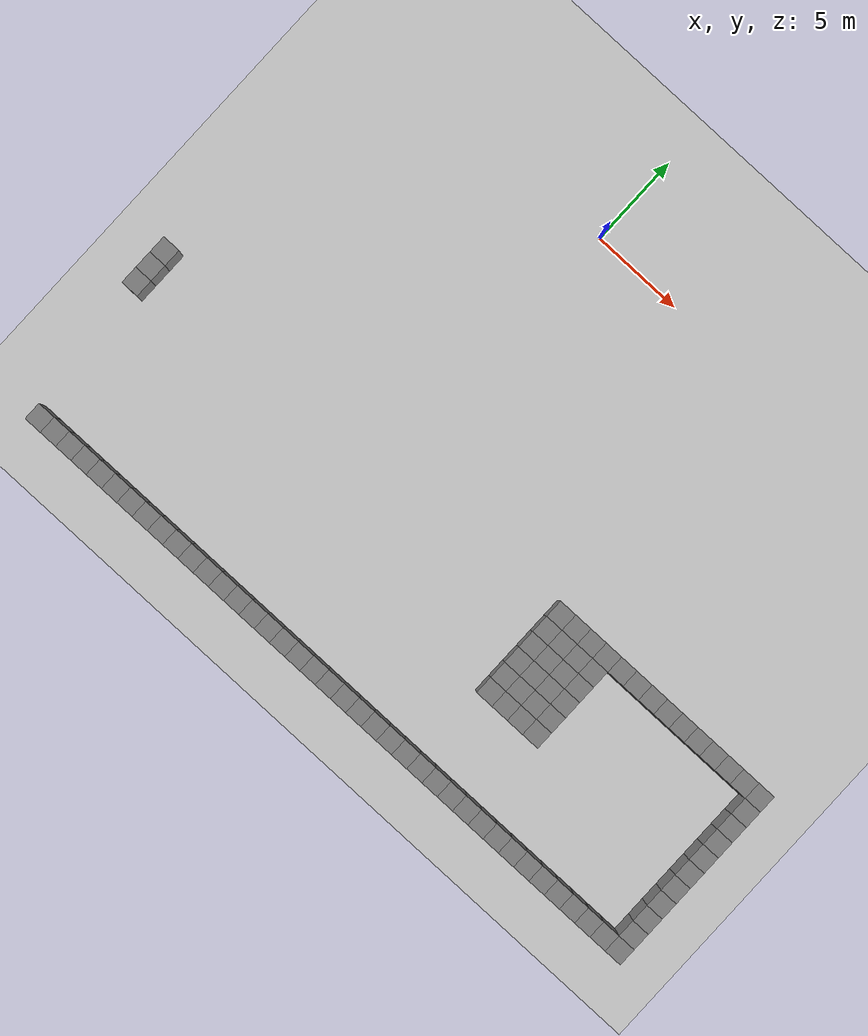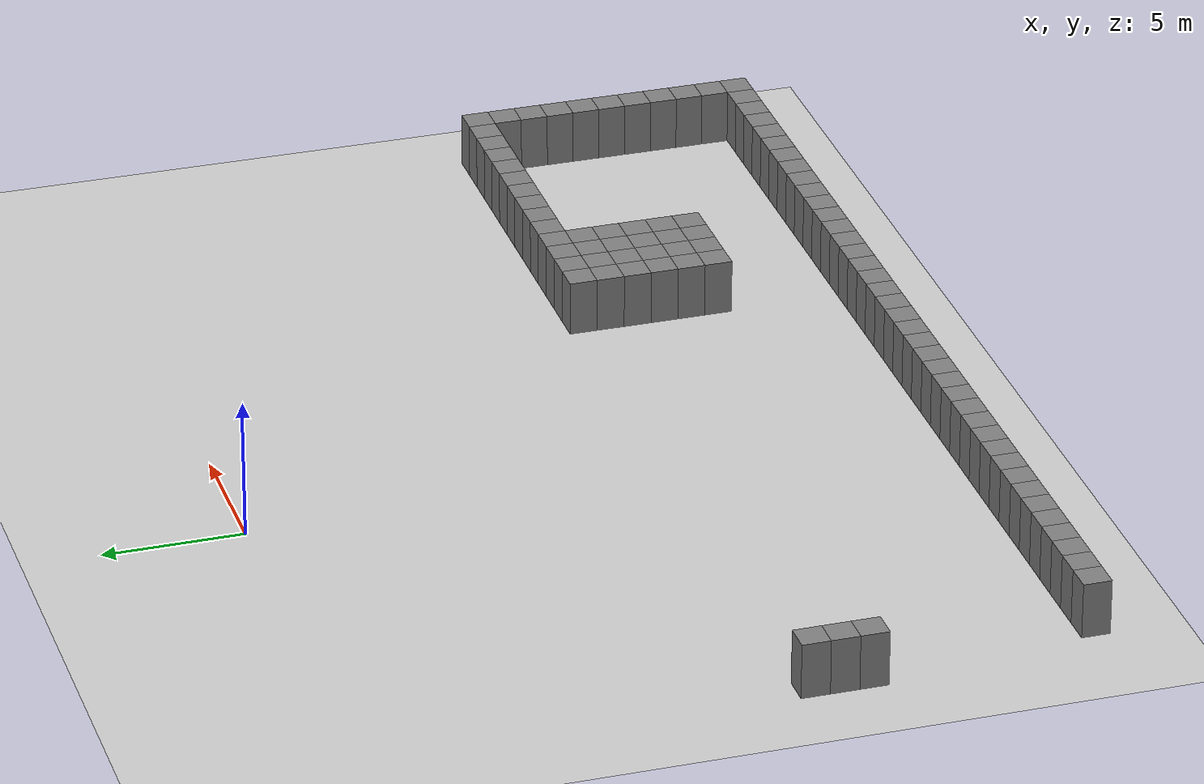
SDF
<sdf version="1.9">
 <world name="grid_world">
  <model name="ground_plane">
   <static>true</static>
   <link name="link">
    <collision name="collision">
     <geometry><plane><normal>0 0 1</normal><size>100 100</size></plane></geometry>
    </collision>
    <visual name="visual">
     <geometry><plane><normal>0 0 1</normal><size>100 100</size></plane></geometry>
     <material>
      <ambient>0.8 0.8 0.8 1</ambient>
      <diffuse>0.8 0.8 0.8 1</diffuse>
      <specular>0.8 0.8 0.8 1</specular>
     </material>
    </visual>
   </link>
  </model>
  <model name="wall_0_11">
   <static>true</static>
   <pose>-14 -25 1 0 0 0</pose>
   <link name="link">
    <collision name="collision"><geometry><box><size>1 1 2</size></box></geometry></collision>
    <visual name="visual">
     <geometry><box><size>1 1 2</size></box></geometry>
     <material>
      <ambient>0.5 0.5 0.5 1</ambient>
      <diffuse>0.5 0.5 0.5 1</diffuse>
      <specular>0.5 0.5 0.5 1</specular>
     </material>
    </visual>
   </link>
  </model>
  <model name="wall_0_12">
   <static>true</static>
   <pose>-13 -25 1 0 0 0</pose>
   <link name="link">
    <collision name="collision"><geometry><box><size>1 1 2</size></box></geometry></collision>
    <visual name="visual">
     <geometry><box><size>1 1 2</size></box></geometry>
     <material>
      <ambient>0.5 0.5 0.5 1</ambient>
      <diffuse>0.5 0.5 0.5 1</diffuse>
      <specular>0.5 0.5 0.5 1</specular>
     </material>
    </visual>
   </link>
  </model>
  <model name="wall_0_13">
   <static>true</static>
   <pose>-12 -25 1 0 0 0</pose>
   <link name="link">
    <collision name="collision"><geometry><box><size>1 1 2</size></box></geometry></collision>
    <visual name="visual">
     <geometry><box><size>1 1 2</size></box></geometry>
     <material>
      <ambient>0.5 0.5 0.5 1</ambient>
      <diffuse>0.5 0.5 0.5 1</diffuse>
      <specular>0.5 0.5 0.5 1</specular>
     </material>
    </visual>
   </link>
  </model>
  <model name="wall_0_14">
   <static>true</static>
   <pose>-11 -25 1 0 0 0</pose>
   <link name="link">
    <collision name="collision"><geometry><box><size>1 1 2</size></box></geometry></collision>
    <visual name="visual">
     <geometry><box><size>1 1 2</size></box></geometry>
     <material>
      <ambient>0.5 0.5 0.5 1</ambient>
      <diffuse>0.5 0.5 0.5 1</diffuse>
      <specular>0.5 0.5 0.5 1</specular>
     </material>
    </visual>
   </link>
  </model>
  <model name="wall_0_15">
   <static>true</static>
   <pose>-10 -25 1 0 0 0</pose>
   <link name="link">
    <collision name="collision"><geometry><box><size>1 1 2</size></box></geometry></collision>
    <visual name="visual">
     <geometry><box><size>1 1 2</size></box></geometry>
     <material>
      <ambient>0.5 0.5 0.5 1</ambient>
      <diffuse>0.5 0.5 0.5 1</diffuse>
      <specular>0.5 0.5 0.5 1</specular>
     </material>
    </visual>
   </link>
  </model>
  <model name="wall_0_16">
   <static>true</static>
   <pose>-9 -25 1 0 0 0</pose>
   <link name="link">
    <collision name="collision"><geometry><box><size>1 1 2</size></box></geometry></collision>
    <visual name="visual">
     <geometry><box><size>1 1 2</size></box></geometry>
     <material>
      <ambient>0.5 0.5 0.5 1</ambient>
      <diffuse>0.5 0.5 0.5 1</diffuse>
      <specular>0.5 0.5 0.5 1</specular>
     </material>
    </visual>
   </link>
  </model>
  <model name="wall_0_17">
   <static>true</static>
   <pose>-8 -25 1 0 0 0</pose>
   <link name="link">
    <collision name="collision"><geometry><box><size>1 1 2</size></box></geometry></collision>
    <visual name="visual">
     <geometry><box><size>1 1 2</size></box></geometry>
     <material>
      <ambient>0.5 0.5 0.5 1</ambient>
      <diffuse>0.5 0.5 0.5 1</diffuse>
      <specular>0.5 0.5 0.5 1</specular>
     </material>
    </visual>
   </link>
  </model>
  <model name="wall_0_18">
   <static>true</static>
   <pose>-7 -25 1 0 0 0</pose>
   <link name="link">
    <collision name="collision"><geometry><box><size>1 1 2</size></box></geometry></collision>
    <visual name="visual">
     <geometry><box><size>1 1 2</size></box></geometry>
     <material>
      <ambient>0.5 0.5 0.5 1</ambient>
      <diffuse>0.5 0.5 0.5 1</diffuse>
      <specular>0.5 0.5 0.5 1</specular>
     </material>
    </visual>
   </link>
  </model>
  <model name="wall_0_19">
   <static>true</static>
   <pose>-6 -25 1 0 0 0</pose>
   <link name="link">
    <collision name="collision"><geometry><box><size>1 1 2</size></box></geometry></collision>
    <visual name="visual">
     <geometry><box><size>1 1 2</size></box></geometry>
     <material>
      <ambient>0.5 0.5 0.5 1</ambient>
      <diffuse>0.5 0.5 0.5 1</diffuse>
      <specular>0.5 0.5 0.5 1</specular>
     </material>
    </visual>
   </link>
  </model>
  <model name="wall_0_20">
   <static>true</static>
   <pose>-5 -25 1 0 0 0</pose>
   <link name="link">
    <collision name="collision"><geometry><box><size>1 1 2</size></box></geometry></collision>
    <visual name="visual">
     <geometry><box><size>1 1 2</size></box></geometry>
     <material>
      <ambient>0.5 0.5 0.5 1</ambient>
      <diffuse>0.5 0.5 0.5 1</diffuse>
      <specular>0.5 0.5 0.5 1</specular>
     </material>
    </visual>
   </link>
  </model>
  <model name="wall_0_21">
   <static>true</static>
   <pose>-4 -25 1 0 0 0</pose>
   <link name="link">
    <collision name="collision"><geometry><box><size>1 1 2</size></box></geometry></collision>
    <visual name="visual">
     <geometry><box><size>1 1 2</size></box></geometry>
     <material>
      <ambient>0.5 0.5 0.5 1</ambient>
      <diffuse>0.5 0.5 0.5 1</diffuse>
      <specular>0.5 0.5 0.5 1</specular>
     </material>
    </visual>
   </link>
  </model>
  <model name="wall_0_22">
   <static>true</static>
   <pose>-3 -25 1 0 0 0</pose>
   <link name="link">
    <collision name="collision"><geometry><box><size>1 1 2</size></box></geometry></collision>
    <visual name="visual">
     <geometry><box><size>1 1 2</size></box></geometry>
     <material>
      <ambient>0.5 0.5 0.5 1</ambient>
      <diffuse>0.5 0.5 0.5 1</diffuse>
      <specular>0.5 0.5 0.5 1</specular>
     </material>
    </visual>
   </link>
  </model>
  <model name="wall_0_23">
   <static>true</static>
   <pose>-2 -25 1 0 0 0</pose>
   <link name="link">
    <collision name="collision"><geometry><box><size>1 1 2</size></box></geometry></collision>
    <visual name="visual">
     <geometry><box><size>1 1 2</size></box></geometry>
     <material>
      <ambient>0.5 0.5 0.5 1</ambient>
      <diffuse>0.5 0.5 0.5 1</diffuse>
      <specular>0.5 0.5 0.5 1</specular>
     </material>
    </visual>
   </link>
  </model>
  <model name="wall_0_24">
   <static>true</static>
   <pose>-1 -25 1 0 0 0</pose>
   <link name="link">
    <collision name="collision"><geometry><box><size>1 1 2</size></box></geometry></collision>
    <visual name="visual">
     <geometry><box><size>1 1 2</size></box></geometry>
     <material>
      <ambient>0.5 0.5 0.5 1</ambient>
      <diffuse>0.5 0.5 0.5 1</diffuse>
      <specular>0.5 0.5 0.5 1</specular>
     </material>
    </visual>
   </link>
  </model>
  <model name="wall_0_25">
   <static>true</static>
   <pose>0 -25 1 0 0 0</pose>
   <link name="link">
    <collision name="collision"><geometry><box><size>1 1 2</size></box></geometry></collision>
    <visual name="visual">
     <geometry><box><size>1 1 2</size></box></geometry>
     <material>
      <ambient>0.5 0.5 0.5 1</ambient>
      <diffuse>0.5 0.5 0.5 1</diffuse>
      <specular>0.5 0.5 0.5 1</specular>
     </material>
    </visual>
   </link>
  </model>
  <model name="wall_0_26">
   <static>true</static>
   <pose>1 -25 1 0 0 0</pose>
   <link name="link">
    <collision name="collision"><geometry><box><size>1 1 2</size></box></geometry></collision>
    <visual name="visual">
     <geometry><box><size>1 1 2</size></box></geometry>
     <material>
      <ambient>0.5 0.5 0.5 1</ambient>
      <diffuse>0.5 0.5 0.5 1</diffuse>
      <specular>0.5 0.5 0.5 1</specular>
     </material>
    </visual>
   </link>
  </model>
  <model name="wall_0_27">
   <static>true</static>
   <pose>2 -25 1 0 0 0</pose>
   <link name="link">
    <collision name="collision"><geometry><box><size>1 1 2</size></box></geometry></collision>
    <visual name="visual">
     <geometry><box><size>1 1 2</size></box></geometry>
     <material>
      <ambient>0.5 0.5 0.5 1</ambient>
      <diffuse>0.5 0.5 0.5 1</diffuse>
      <specular>0.5 0.5 0.5 1</specular>
     </material>
    </visual>
   </link>
  </model>
  <model name="wall_0_28">
   <static>true</static>
   <pose>3 -25 1 0 0 0</pose>
   <link name="link">
    <collision name="collision"><geometry><box><size>1 1 2</size></box></geometry></collision>
    <visual name="visual">
     <geometry><box><size>1 1 2</size></box></geometry>
     <material>
      <ambient>0.5 0.5 0.5 1</ambient>
      <diffuse>0.5 0.5 0.5 1</diffuse>
      <specular>0.5 0.5 0.5 1</specular>
     </material>
    </visual>
   </link>
  </model>
  <model name="wall_0_29">
   <static>true</static>
   <pose>4 -25 1 0 0 0</pose>
   <link name="link">
    <collision name="collision"><geometry><box><size>1 1 2</size></box></geometry></collision>
    <visual name="visual">
     <geometry><box><size>1 1 2</size></box></geometry>
     <material>
      <ambient>0.5 0.5 0.5 1</ambient>
      <diffuse>0.5 0.5 0.5 1</diffuse>
      <specular>0.5 0.5 0.5 1</specular>
     </material>
    </visual>
   </link>
  </model>
  <model name="wall_0_30">
   <static>true</static>
   <pose>5 -25 1 0 0 0</pose>
   <link name="link">
    <collision name="collision"><geometry><box><size>1 1 2</size></box></geometry></collision>
    <visual name="visual">
     <geometry><box><size>1 1 2</size></box></geometry>
     <material>
      <ambient>0.5 0.5 0.5 1</ambient>
      <diffuse>0.5 0.5 0.5 1</diffuse>
      <specular>0.5 0.5 0.5 1</specular>
     </material>
    </visual>
   </link>
  </model>
  <model name="wall_0_31">
   <static>true</static>
   <pose>6 -25 1 0 0 0</pose>
   <link name="link">
    <collision name="collision"><geometry><box><size>1 1 2</size></box></geometry></collision>
    <visual name="visual">
     <geometry><box><size>1 1 2</size></box></geometry>
     <material>
      <ambient>0.5 0.5 0.5 1</ambient>
      <diffuse>0.5 0.5 0.5 1</diffuse>
      <specular>0.5 0.5 0.5 1</specular>
     </material>
    </visual>
   </link>
  </model>
  <model name="wall_0_32">
   <static>true</static>
   <pose>7 -25 1 0 0 0</pose>
   <link name="link">
    <collision name="collision"><geometry><box><size>1 1 2</size></box></geometry></collision>
    <visual name="visual">
     <geometry><box><size>1 1 2</size></box></geometry>
     <material>
      <ambient>0.5 0.5 0.5 1</ambient>
      <diffuse>0.5 0.5 0.5 1</diffuse>
      <specular>0.5 0.5 0.5 1</specular>
     </material>
    </visual>
   </link>
  </model>
  <model name="wall_0_33">
   <static>true</static>
   <pose>8 -25 1 0 0 0</pose>
   <link name="link">
    <collision name="collision"><geometry><box><size>1 1 2</size></box></geometry></collision>
    <visual name="visual">
     <geometry><box><size>1 1 2</size></box></geometry>
     <material>
      <ambient>0.5 0.5 0.5 1</ambient>
      <diffuse>0.5 0.5 0.5 1</diffuse>
      <specular>0.5 0.5 0.5 1</specular>
     </material>
    </visual>
   </link>
  </model>
  <model name="wall_0_34">
   <static>true</static>
   <pose>9 -25 1 0 0 0</pose>
   <link name="link">
    <collision name="collision"><geometry><box><size>1 1 2</size></box></geometry></collision>
    <visual name="visual">
     <geometry><box><size>1 1 2</size></box></geometry>
     <material>
      <ambient>0.5 0.5 0.5 1</ambient>
      <diffuse>0.5 0.5 0.5 1</diffuse>
      <specular>0.5 0.5 0.5 1</specular>
     </material>
    </visual>
   </link>
  </model>
  <model name="wall_0_35">
   <static>true</static>
   <pose>10 -25 1 0 0 0</pose>
   <link name="link">
    <collision name="collision"><geometry><box><size>1 1 2</size></box></geometry></collision>
    <visual name="visual">
     <geometry><box><size>1 1 2</size></box></geometry>
     <material>
      <ambient>0.5 0.5 0.5 1</ambient>
      <diffuse>0.5 0.5 0.5 1</diffuse>
      <specular>0.5 0.5 0.5 1</specular>
     </material>
    </visual>
   </link>
  </model>
  <model name="wall_0_36">
   <static>true</static>
   <pose>11 -25 1 0 0 0</pose>
   <link name="link">
    <collision name="collision"><geometry><box><size>1 1 2</size></box></geometry></collision>
    <visual name="visual">
     <geometry><box><size>1 1 2</size></box></geometry>
     <material>
      <ambient>0.5 0.5 0.5 1</ambient>
      <diffuse>0.5 0.5 0.5 1</diffuse>
      <specular>0.5 0.5 0.5 1</specular>
     </material>
    </visual>
   </link>
  </model>
  <model name="wall_0_37">
   <static>true</static>
   <pose>12 -25 1 0 0 0</pose>
   <link name="link">
    <collision name="collision"><geometry><box><size>1 1 2</size></box></geometry></collision>
    <visual name="visual">
     <geometry><box><size>1 1 2</size></box></geometry>
     <material>
      <ambient>0.5 0.5 0.5 1</ambient>
      <diffuse>0.5 0.5 0.5 1</diffuse>
      <specular>0.5 0.5 0.5 1</specular>
     </material>
    </visual>
   </link>
  </model>
  <model name="wall_0_38">
   <static>true</static>
   <pose>13 -25 1 0 0 0</pose>
   <link name="link">
    <collision name="collision"><geometry><box><size>1 1 2</size></box></geometry></collision>
    <visual name="visual">
     <geometry><box><size>1 1 2</size></box></geometry>
     <material>
      <ambient>0.5 0.5 0.5 1</ambient>
      <diffuse>0.5 0.5 0.5 1</diffuse>
      <specular>0.5 0.5 0.5 1</specular>
     </material>
    </visual>
   </link>
  </model>
  <model name="wall_0_39">
   <static>true</static>
   <pose>14 -25 1 0 0 0</pose>
   <link name="link">
    <collision name="collision"><geometry><box><size>1 1 2</size></box></geometry></collision>
    <visual name="visual">
     <geometry><box><size>1 1 2</size></box></geometry>
     <material>
      <ambient>0.5 0.5 0.5 1</ambient>
      <diffuse>0.5 0.5 0.5 1</diffuse>
      <specular>0.5 0.5 0.5 1</specular>
     </material>
    </visual>
   </link>
  </model>
  <model name="wall_0_40">
   <static>true</static>
   <pose>15 -25 1 0 0 0</pose>
   <link name="link">
    <collision name="collision"><geometry><box><size>1 1 2</size></box></geometry></collision>
    <visual name="visual">
     <geometry><box><size>1 1 2</size></box></geometry>
     <material>
      <ambient>0.5 0.5 0.5 1</ambient>
      <diffuse>0.5 0.5 0.5 1</diffuse>
      <specular>0.5 0.5 0.5 1</specular>
     </material>
    </visual>
   </link>
  </model>
  <model name="wall_0_41">
   <static>true</static>
   <pose>16 -25 1 0 0 0</pose>
   <link name="link">
    <collision name="collision"><geometry><box><size>1 1 2</size></box></geometry></collision>
    <visual name="visual">
     <geometry><box><size>1 1 2</size></box></geometry>
     <material>
      <ambient>0.5 0.5 0.5 1</ambient>
      <diffuse>0.5 0.5 0.5 1</diffuse>
      <specular>0.5 0.5 0.5 1</specular>
     </material>
    </visual>
   </link>
  </model>
  <model name="wall_0_42">
   <static>true</static>
   <pose>17 -25 1 0 0 0</pose>
   <link name="link">
    <collision name="collision"><geometry><box><size>1 1 2</size></box></geometry></collision>
    <visual name="visual">
     <geometry><box><size>1 1 2</size></box></geometry>
     <material>
      <ambient>0.5 0.5 0.5 1</ambient>
      <diffuse>0.5 0.5 0.5 1</diffuse>
      <specular>0.5 0.5 0.5 1</specular>
     </material>
    </visual>
   </link>
  </model>
  <model name="wall_0_43">
   <static>true</static>
   <pose>18 -25 1 0 0 0</pose>
   <link name="link">
    <collision name="collision"><geometry><box><size>1 1 2</size></box></geometry></collision>
    <visual name="visual">
     <geometry><box><size>1 1 2</size></box></geometry>
     <material>
      <ambient>0.5 0.5 0.5 1</ambient>
      <diffuse>0.5 0.5 0.5 1</diffuse>
      <specular>0.5 0.5 0.5 1</specular>
     </material>
    </visual>
   </link>
  </model>
  <model name="wall_0_44">
   <static>true</static>
   <pose>19 -25 1 0 0 0</pose>
   <link name="link">
    <collision name="collision"><geometry><box><size>1 1 2</size></box></geometry></collision>
    <visual name="visual">
     <geometry><box><size>1 1 2</size></box></geometry>
     <material>
      <ambient>0.5 0.5 0.5 1</ambient>
      <diffuse>0.5 0.5 0.5 1</diffuse>
      <specular>0.5 0.5 0.5 1</specular>
     </material>
    </visual>
   </link>
  </model>
  <model name="wall_0_45">
   <static>true</static>
   <pose>20 -25 1 0 0 0</pose>
   <link name="link">
    <collision name="collision"><geometry><box><size>1 1 2</size></box></geometry></collision>
    <visual name="visual">
     <geometry><box><size>1 1 2</size></box></geometry>
     <material>
      <ambient>0.5 0.5 0.5 1</ambient>
      <diffuse>0.5 0.5 0.5 1</diffuse>
      <specular>0.5 0.5 0.5 1</specular>
     </material>
    </visual>
   </link>
  </model>
  <model name="wall_0_46">
   <static>true</static>
   <pose>21 -25 1 0 0 0</pose>
   <link name="link">
    <collision name="collision"><geometry><box><size>1 1 2</size></box></geometry></collision>
    <visual name="visual">
     <geometry><box><size>1 1 2</size></box></geometry>
     <material>
      <ambient>0.5 0.5 0.5 1</ambient>
      <diffuse>0.5 0.5 0.5 1</diffuse>
      <specular>0.5 0.5 0.5 1</specular>
     </material>
    </visual>
   </link>
  </model>
  <model name="wall_0_47">
   <static>true</static>
   <pose>22 -25 1 0 0 0</pose>
   <link name="link">
    <collision name="collision"><geometry><box><size>1 1 2</size></box></geometry></collision>
    <visual name="visual">
     <geometry><box><size>1 1 2</size></box></geometry>
     <material>
      <ambient>0.5 0.5 0.5 1</ambient>
      <diffuse>0.5 0.5 0.5 1</diffuse>
      <specular>0.5 0.5 0.5 1</specular>
     </material>
    </visual>
   </link>
  </model>
  <model name="wall_0_48">
   <static>true</static>
   <pose>23 -25 1 0 0 0</pose>
   <link name="link">
    <collision name="collision"><geometry><box><size>1 1 2</size></box></geometry></collision>
    <visual name="visual">
     <geometry><box><size>1 1 2</size></box></geometry>
     <material>
      <ambient>0.5 0.5 0.5 1</ambient>
      <diffuse>0.5 0.5 0.5 1</diffuse>
      <specular>0.5 0.5 0.5 1</specular>
     </material>
    </visual>
   </link>
  </model>
  <model name="wall_0_49">
   <static>true</static>
   <pose>24 -25 1 0 0 0</pose>
   <link name="link">
    <collision name="collision"><geometry><box><size>1 1 2</size></box></geometry></collision>
    <visual name="visual">
     <geometry><box><size>1 1 2</size></box></geometry>
     <material>
      <ambient>0.5 0.5 0.5 1</ambient>
      <diffuse>0.5 0.5 0.5 1</diffuse>
      <specular>0.5 0.5 0.5 1</specular>
     </material>
    </visual>
   </link>
  </model>
  <model name="wall_1_49">
   <static>true</static>
   <pose>24 -24 1 0 0 0</pose>
   <link name="link">
    <collision name="collision"><geometry><box><size>1 1 2</size></box></geometry></collision>
    <visual name="visual">
     <geometry><box><size>1 1 2</size></box></geometry>
     <material>
      <ambient>0.5 0.5 0.5 1</ambient>
      <diffuse>0.5 0.5 0.5 1</diffuse>
      <specular>0.5 0.5 0.5 1</specular>
     </material>
    </visual>
   </link>
  </model>
  <model name="wall_2_49">
   <static>true</static>
   <pose>24 -23 1 0 0 0</pose>
   <link name="link">
    <collision name="collision"><geometry><box><size>1 1 2</size></box></geometry></collision>
    <visual name="visual">
     <geometry><box><size>1 1 2</size></box></geometry>
     <material>
      <ambient>0.5 0.5 0.5 1</ambient>
      <diffuse>0.5 0.5 0.5 1</diffuse>
      <specular>0.5 0.5 0.5 1</specular>
     </material>
    </visual>
   </link>
  </model>
  <model name="wall_3_49">
   <static>true</static>
   <pose>24 -22 1 0 0 0</pose>
   <link name="link">
    <collision name="collision"><geometry><box><size>1 1 2</size></box></geometry></collision>
    <visual name="visual">
     <geometry><box><size>1 1 2</size></box></geometry>
     <material>
      <ambient>0.5 0.5 0.5 1</ambient>
      <diffuse>0.5 0.5 0.5 1</diffuse>
      <specular>0.5 0.5 0.5 1</specular>
     </material>
    </visual>
   </link>
  </model>
  <model name="wall_4_49">
   <static>true</static>
   <pose>24 -21 1 0 0 0</pose>
   <link name="link">
    <collision name="collision"><geometry><box><size>1 1 2</size></box></geometry></collision>
    <visual name="visual">
     <geometry><box><size>1 1 2</size></box></geometry>
     <material>
      <ambient>0.5 0.5 0.5 1</ambient>
      <diffuse>0.5 0.5 0.5 1</diffuse>
      <specular>0.5 0.5 0.5 1</specular>
     </material>
    </visual>
   </link>
  </model>
  <model name="wall_5_36">
   <static>true</static>
   <pose>11 -20 1 0 0 0</pose>
   <link name="link">
    <collision name="collision"><geometry><box><size>1 1 2</size></box></geometry></collision>
    <visual name="visual">
     <geometry><box><size>1 1 2</size></box></geometry>
     <material>
      <ambient>0.5 0.5 0.5 1</ambient>
      <diffuse>0.5 0.5 0.5 1</diffuse>
      <specular>0.5 0.5 0.5 1</specular>
     </material>
    </visual>
   </link>
  </model>
  <model name="wall_5_37">
   <static>true</static>
   <pose>12 -20 1 0 0 0</pose>
   <link name="link">
    <collision name="collision"><geometry><box><size>1 1 2</size></box></geometry></collision>
    <visual name="visual">
     <geometry><box><size>1 1 2</size></box></geometry>
     <material>
      <ambient>0.5 0.5 0.5 1</ambient>
      <diffuse>0.5 0.5 0.5 1</diffuse>
      <specular>0.5 0.5 0.5 1</specular>
     </material>
    </visual>
   </link>
  </model>
  <model name="wall_5_38">
   <static>true</static>
   <pose>13 -20 1 0 0 0</pose>
   <link name="link">
    <collision name="collision"><geometry><box><size>1 1 2</size></box></geometry></collision>
    <visual name="visual">
     <geometry><box><size>1 1 2</size></box></geometry>
     <material>
      <ambient>0.5 0.5 0.5 1</ambient>
      <diffuse>0.5 0.5 0.5 1</diffuse>
      <specular>0.5 0.5 0.5 1</specular>
     </material>
    </visual>
   </link>
  </model>
  <model name="wall_5_39">
   <static>true</static>
   <pose>14 -20 1 0 0 0</pose>
   <link name="link">
    <collision name="collision"><geometry><box><size>1 1 2</size></box></geometry></collision>
    <visual name="visual">
     <geometry><box><size>1 1 2</size></box></geometry>
     <material>
      <ambient>0.5 0.5 0.5 1</ambient>
      <diffuse>0.5 0.5 0.5 1</diffuse>
      <specular>0.5 0.5 0.5 1</specular>
     </material>
    </visual>
   </link>
  </model>
  <model name="wall_5_49">
   <static>true</static>
   <pose>24 -20 1 0 0 0</pose>
   <link name="link">
    <collision name="collision"><geometry><box><size>1 1 2</size></box></geometry></collision>
    <visual name="visual">
     <geometry><box><size>1 1 2</size></box></geometry>
     <material>
      <ambient>0.5 0.5 0.5 1</ambient>
      <diffuse>0.5 0.5 0.5 1</diffuse>
      <specular>0.5 0.5 0.5 1</specular>
     </material>
    </visual>
   </link>
  </model>
  <model name="wall_6_36">
   <static>true</static>
   <pose>11 -19 1 0 0 0</pose>
   <link name="link">
    <collision name="collision"><geometry><box><size>1 1 2</size></box></geometry></collision>
    <visual name="visual">
     <geometry><box><size>1 1 2</size></box></geometry>
     <material>
      <ambient>0.5 0.5 0.5 1</ambient>
      <diffuse>0.5 0.5 0.5 1</diffuse>
      <specular>0.5 0.5 0.5 1</specular>
     </material>
    </visual>
   </link>
  </model>
  <model name="wall_6_37">
   <static>true</static>
   <pose>12 -19 1 0 0 0</pose>
   <link name="link">
    <collision name="collision"><geometry><box><size>1 1 2</size></box></geometry></collision>
    <visual name="visual">
     <geometry><box><size>1 1 2</size></box></geometry>
     <material>
      <ambient>0.5 0.5 0.5 1</ambient>
      <diffuse>0.5 0.5 0.5 1</diffuse>
      <specular>0.5 0.5 0.5 1</specular>
     </material>
    </visual>
   </link>
  </model>
  <model name="wall_6_38">
   <static>true</static>
   <pose>13 -19 1 0 0 0</pose>
   <link name="link">
    <collision name="collision"><geometry><box><size>1 1 2</size></box></geometry></collision>
    <visual name="visual">
     <geometry><box><size>1 1 2</size></box></geometry>
     <material>
      <ambient>0.5 0.5 0.5 1</ambient>
      <diffuse>0.5 0.5 0.5 1</diffuse>
      <specular>0.5 0.5 0.5 1</specular>
     </material>
    </visual>
   </link>
  </model>
  <model name="wall_6_39">
   <static>true</static>
   <pose>14 -19 1 0 0 0</pose>
   <link name="link">
    <collision name="collision"><geometry><box><size>1 1 2</size></box></geometry></collision>
    <visual name="visual">
     <geometry><box><size>1 1 2</size></box></geometry>
     <material>
      <ambient>0.5 0.5 0.5 1</ambient>
      <diffuse>0.5 0.5 0.5 1</diffuse>
      <specular>0.5 0.5 0.5 1</specular>
     </material>
    </visual>
   </link>
  </model>
  <model name="wall_6_49">
   <static>true</static>
   <pose>24 -19 1 0 0 0</pose>
   <link name="link">
    <collision name="collision"><geometry><box><size>1 1 2</size></box></geometry></collision>
    <visual name="visual">
     <geometry><box><size>1 1 2</size></box></geometry>
     <material>
      <ambient>0.5 0.5 0.5 1</ambient>
      <diffuse>0.5 0.5 0.5 1</diffuse>
      <specular>0.5 0.5 0.5 1</specular>
     </material>
    </visual>
   </link>
  </model>
  <model name="wall_7_36">
   <static>true</static>
   <pose>11 -18 1 0 0 0</pose>
   <link name="link">
    <collision name="collision"><geometry><box><size>1 1 2</size></box></geometry></collision>
    <visual name="visual">
     <geometry><box><size>1 1 2</size></box></geometry>
     <material>
      <ambient>0.5 0.5 0.5 1</ambient>
      <diffuse>0.5 0.5 0.5 1</diffuse>
      <specular>0.5 0.5 0.5 1</specular>
     </material>
    </visual>
   </link>
  </model>
  <model name="wall_7_37">
   <static>true</static>
   <pose>12 -18 1 0 0 0</pose>
   <link name="link">
    <collision name="collision"><geometry><box><size>1 1 2</size></box></geometry></collision>
    <visual name="visual">
     <geometry><box><size>1 1 2</size></box></geometry>
     <material>
      <ambient>0.5 0.5 0.5 1</ambient>
      <diffuse>0.5 0.5 0.5 1</diffuse>
      <specular>0.5 0.5 0.5 1</specular>
     </material>
    </visual>
   </link>
  </model>
  <model name="wall_7_38">
   <static>true</static>
   <pose>13 -18 1 0 0 0</pose>
   <link name="link">
    <collision name="collision"><geometry><box><size>1 1 2</size></box></geometry></collision>
    <visual name="visual">
     <geometry><box><size>1 1 2</size></box></geometry>
     <material>
      <ambient>0.5 0.5 0.5 1</ambient>
      <diffuse>0.5 0.5 0.5 1</diffuse>
      <specular>0.5 0.5 0.5 1</specular>
     </material>
    </visual>
   </link>
  </model>
  <model name="wall_7_39">
   <static>true</static>
   <pose>14 -18 1 0 0 0</pose>
   <link name="link">
    <collision name="collision"><geometry><box><size>1 1 2</size></box></geometry></collision>
    <visual name="visual">
     <geometry><box><size>1 1 2</size></box></geometry>
     <material>
      <ambient>0.5 0.5 0.5 1</ambient>
      <diffuse>0.5 0.5 0.5 1</diffuse>
      <specular>0.5 0.5 0.5 1</specular>
     </material>
    </visual>
   </link>
  </model>
  <model name="wall_7_49">
   <static>true</static>
   <pose>24 -18 1 0 0 0</pose>
   <link name="link">
    <collision name="collision"><geometry><box><size>1 1 2</size></box></geometry></collision>
    <visual name="visual">
     <geometry><box><size>1 1 2</size></box></geometry>
     <material>
      <ambient>0.5 0.5 0.5 1</ambient>
      <diffuse>0.5 0.5 0.5 1</diffuse>
      <specular>0.5 0.5 0.5 1</specular>
     </material>
    </visual>
   </link>
  </model>
  <model name="wall_8_10">
   <static>true</static>
   <pose>-15 -17 1 0 0 0</pose>
   <link name="link">
    <collision name="collision"><geometry><box><size>1 1 2</size></box></geometry></collision>
    <visual name="visual">
     <geometry><box><size>1 1 2</size></box></geometry>
     <material>
      <ambient>0.5 0.5 0.5 1</ambient>
      <diffuse>0.5 0.5 0.5 1</diffuse>
      <specular>0.5 0.5 0.5 1</specular>
     </material>
    </visual>
   </link>
  </model>
  <model name="wall_8_36">
   <static>true</static>
   <pose>11 -17 1 0 0 0</pose>
   <link name="link">
    <collision name="collision"><geometry><box><size>1 1 2</size></box></geometry></collision>
    <visual name="visual">
     <geometry><box><size>1 1 2</size></box></geometry>
     <material>
      <ambient>0.5 0.5 0.5 1</ambient>
      <diffuse>0.5 0.5 0.5 1</diffuse>
      <specular>0.5 0.5 0.5 1</specular>
     </material>
    </visual>
   </link>
  </model>
  <model name="wall_8_37">
   <static>true</static>
   <pose>12 -17 1 0 0 0</pose>
   <link name="link">
    <collision name="collision"><geometry><box><size>1 1 2</size></box></geometry></collision>
    <visual name="visual">
     <geometry><box><size>1 1 2</size></box></geometry>
     <material>
      <ambient>0.5 0.5 0.5 1</ambient>
      <diffuse>0.5 0.5 0.5 1</diffuse>
      <specular>0.5 0.5 0.5 1</specular>
     </material>
    </visual>
   </link>
  </model>
  <model name="wall_8_38">
   <static>true</static>
   <pose>13 -17 1 0 0 0</pose>
   <link name="link">
    <collision name="collision"><geometry><box><size>1 1 2</size></box></geometry></collision>
    <visual name="visual">
     <geometry><box><size>1 1 2</size></box></geometry>
     <material>
      <ambient>0.5 0.5 0.5 1</ambient>
      <diffuse>0.5 0.5 0.5 1</diffuse>
      <specular>0.5 0.5 0.5 1</specular>
     </material>
    </visual>
   </link>
  </model>
  <model name="wall_8_39">
   <static>true</static>
   <pose>14 -17 1 0 0 0</pose>
   <link name="link">
    <collision name="collision"><geometry><box><size>1 1 2</size></box></geometry></collision>
    <visual name="visual">
     <geometry><box><size>1 1 2</size></box></geometry>
     <material>
      <ambient>0.5 0.5 0.5 1</ambient>
      <diffuse>0.5 0.5 0.5 1</diffuse>
      <specular>0.5 0.5 0.5 1</specular>
     </material>
    </visual>
   </link>
  </model>
  <model name="wall_8_49">
   <static>true</static>
   <pose>24 -17 1 0 0 0</pose>
   <link name="link">
    <collision name="collision"><geometry><box><size>1 1 2</size></box></geometry></collision>
    <visual name="visual">
     <geometry><box><size>1 1 2</size></box></geometry>
     <material>
      <ambient>0.5 0.5 0.5 1</ambient>
      <diffuse>0.5 0.5 0.5 1</diffuse>
      <specular>0.5 0.5 0.5 1</specular>
     </material>
    </visual>
   </link>
  </model>
  <model name="wall_9_10">
   <static>true</static>
   <pose>-15 -16 1 0 0 0</pose>
   <link name="link">
    <collision name="collision"><geometry><box><size>1 1 2</size></box></geometry></collision>
    <visual name="visual">
     <geometry><box><size>1 1 2</size></box></geometry>
     <material>
      <ambient>0.5 0.5 0.5 1</ambient>
      <diffuse>0.5 0.5 0.5 1</diffuse>
      <specular>0.5 0.5 0.5 1</specular>
     </material>
    </visual>
   </link>
  </model>
  <model name="wall_9_36">
   <static>true</static>
   <pose>11 -16 1 0 0 0</pose>
   <link name="link">
    <collision name="collision"><geometry><box><size>1 1 2</size></box></geometry></collision>
    <visual name="visual">
     <geometry><box><size>1 1 2</size></box></geometry>
     <material>
      <ambient>0.5 0.5 0.5 1</ambient>
      <diffuse>0.5 0.5 0.5 1</diffuse>
      <specular>0.5 0.5 0.5 1</specular>
     </material>
    </visual>
   </link>
  </model>
  <model name="wall_9_37">
   <static>true</static>
   <pose>12 -16 1 0 0 0</pose>
   <link name="link">
    <collision name="collision"><geometry><box><size>1 1 2</size></box></geometry></collision>
    <visual name="visual">
     <geometry><box><size>1 1 2</size></box></geometry>
     <material>
      <ambient>0.5 0.5 0.5 1</ambient>
      <diffuse>0.5 0.5 0.5 1</diffuse>
      <specular>0.5 0.5 0.5 1</specular>
     </material>
    </visual>
   </link>
  </model>
  <model name="wall_9_38">
   <static>true</static>
   <pose>13 -16 1 0 0 0</pose>
   <link name="link">
    <collision name="collision"><geometry><box><size>1 1 2</size></box></geometry></collision>
    <visual name="visual">
     <geometry><box><size>1 1 2</size></box></geometry>
     <material>
      <ambient>0.5 0.5 0.5 1</ambient>
      <diffuse>0.5 0.5 0.5 1</diffuse>
      <specular>0.5 0.5 0.5 1</specular>
     </material>
    </visual>
   </link>
  </model>
  <model name="wall_9_39">
   <static>true</static>
   <pose>14 -16 1 0 0 0</pose>
   <link name="link">
    <collision name="collision"><geometry><box><size>1 1 2</size></box></geometry></collision>
    <visual name="visual">
     <geometry><box><size>1 1 2</size></box></geometry>
     <material>
      <ambient>0.5 0.5 0.5 1</ambient>
      <diffuse>0.5 0.5 0.5 1</diffuse>
      <specular>0.5 0.5 0.5 1</specular>
     </material>
    </visual>
   </link>
  </model>
  <model name="wall_9_49">
   <static>true</static>
   <pose>24 -16 1 0 0 0</pose>
   <link name="link">
    <collision name="collision"><geometry><box><size>1 1 2</size></box></geometry></collision>
    <visual name="visual">
     <geometry><box><size>1 1 2</size></box></geometry>
     <material>
      <ambient>0.5 0.5 0.5 1</ambient>
      <diffuse>0.5 0.5 0.5 1</diffuse>
      <specular>0.5 0.5 0.5 1</specular>
     </material>
    </visual>
   </link>
  </model>
  <model name="wall_10_10">
   <static>true</static>
   <pose>-15 -15 1 0 0 0</pose>
   <link name="link">
    <collision name="collision"><geometry><box><size>1 1 2</size></box></geometry></collision>
    <visual name="visual">
     <geometry><box><size>1 1 2</size></box></geometry>
     <material>
      <ambient>0.5 0.5 0.5 1</ambient>
      <diffuse>0.5 0.5 0.5 1</diffuse>
      <specular>0.5 0.5 0.5 1</specular>
     </material>
    </visual>
   </link>
  </model>
  <model name="wall_10_36">
   <static>true</static>
   <pose>11 -15 1 0 0 0</pose>
   <link name="link">
    <collision name="collision"><geometry><box><size>1 1 2</size></box></geometry></collision>
    <visual name="visual">
     <geometry><box><size>1 1 2</size></box></geometry>
     <material>
      <ambient>0.5 0.5 0.5 1</ambient>
      <diffuse>0.5 0.5 0.5 1</diffuse>
      <specular>0.5 0.5 0.5 1</specular>
     </material>
    </visual>
   </link>
  </model>
  <model name="wall_10_37">
   <static>true</static>
   <pose>12 -15 1 0 0 0</pose>
   <link name="link">
    <collision name="collision"><geometry><box><size>1 1 2</size></box></geometry></collision>
    <visual name="visual">
     <geometry><box><size>1 1 2</size></box></geometry>
     <material>
      <ambient>0.5 0.5 0.5 1</ambient>
      <diffuse>0.5 0.5 0.5 1</diffuse>
      <specular>0.5 0.5 0.5 1</specular>
     </material>
    </visual>
   </link>
  </model>
  <model name="wall_10_38">
   <static>true</static>
   <pose>13 -15 1 0 0 0</pose>
   <link name="link">
    <collision name="collision"><geometry><box><size>1 1 2</size></box></geometry></collision>
    <visual name="visual">
     <geometry><box><size>1 1 2</size></box></geometry>
     <material>
      <ambient>0.5 0.5 0.5 1</ambient>
      <diffuse>0.5 0.5 0.5 1</diffuse>
      <specular>0.5 0.5 0.5 1</specular>
     </material>
    </visual>
   </link>
  </model>
  <model name="wall_10_39">
   <static>true</static>
   <pose>14 -15 1 0 0 0</pose>
   <link name="link">
    <collision name="collision"><geometry><box><size>1 1 2</size></box></geometry></collision>
    <visual name="visual">
     <geometry><box><size>1 1 2</size></box></geometry>
     <material>
      <ambient>0.5 0.5 0.5 1</ambient>
      <diffuse>0.5 0.5 0.5 1</diffuse>
      <specular>0.5 0.5 0.5 1</specular>
     </material>
    </visual>
   </link>
  </model>
  <model name="wall_10_40">
   <static>true</static>
   <pose>15 -15 1 0 0 0</pose>
   <link name="link">
    <collision name="collision"><geometry><box><size>1 1 2</size></box></geometry></collision>
    <visual name="visual">
     <geometry><box><size>1 1 2</size></box></geometry>
     <material>
      <ambient>0.5 0.5 0.5 1</ambient>
      <diffuse>0.5 0.5 0.5 1</diffuse>
      <specular>0.5 0.5 0.5 1</specular>
     </material>
    </visual>
   </link>
  </model>
  <model name="wall_10_41">
   <static>true</static>
   <pose>16 -15 1 0 0 0</pose>
   <link name="link">
    <collision name="collision"><geometry><box><size>1 1 2</size></box></geometry></collision>
    <visual name="visual">
     <geometry><box><size>1 1 2</size></box></geometry>
     <material>
      <ambient>0.5 0.5 0.5 1</ambient>
      <diffuse>0.5 0.5 0.5 1</diffuse>
      <specular>0.5 0.5 0.5 1</specular>
     </material>
    </visual>
   </link>
  </model>
  <model name="wall_10_42">
   <static>true</static>
   <pose>17 -15 1 0 0 0</pose>
   <link name="link">
    <collision name="collision"><geometry><box><size>1 1 2</size></box></geometry></collision>
    <visual name="visual">
     <geometry><box><size>1 1 2</size></box></geometry>
     <material>
      <ambient>0.5 0.5 0.5 1</ambient>
      <diffuse>0.5 0.5 0.5 1</diffuse>
      <specular>0.5 0.5 0.5 1</specular>
     </material>
    </visual>
   </link>
  </model>
  <model name="wall_10_43">
   <static>true</static>
   <pose>18 -15 1 0 0 0</pose>
   <link name="link">
    <collision name="collision"><geometry><box><size>1 1 2</size></box></geometry></collision>
    <visual name="visual">
     <geometry><box><size>1 1 2</size></box></geometry>
     <material>
      <ambient>0.5 0.5 0.5 1</ambient>
      <diffuse>0.5 0.5 0.5 1</diffuse>
      <specular>0.5 0.5 0.5 1</specular>
     </material>
    </visual>
   </link>
  </model>
  <model name="wall_10_44">
   <static>true</static>
   <pose>19 -15 1 0 0 0</pose>
   <link name="link">
    <collision name="collision"><geometry><box><size>1 1 2</size></box></geometry></collision>
    <visual name="visual">
     <geometry><box><size>1 1 2</size></box></geometry>
     <material>
      <ambient>0.5 0.5 0.5 1</ambient>
      <diffuse>0.5 0.5 0.5 1</diffuse>
      <specular>0.5 0.5 0.5 1</specular>
     </material>
    </visual>
   </link>
  </model>
  <model name="wall_10_45">
   <static>true</static>
   <pose>20 -15 1 0 0 0</pose>
   <link name="link">
    <collision name="collision"><geometry><box><size>1 1 2</size></box></geometry></collision>
    <visual name="visual">
     <geometry><box><size>1 1 2</size></box></geometry>
     <material>
      <ambient>0.5 0.5 0.5 1</ambient>
      <diffuse>0.5 0.5 0.5 1</diffuse>
      <specular>0.5 0.5 0.5 1</specular>
     </material>
    </visual>
   </link>
  </model>
  <model name="wall_10_46">
   <static>true</static>
   <pose>21 -15 1 0 0 0</pose>
   <link name="link">
    <collision name="collision"><geometry><box><size>1 1 2</size></box></geometry></collision>
    <visual name="visual">
     <geometry><box><size>1 1 2</size></box></geometry>
     <material>
      <ambient>0.5 0.5 0.5 1</ambient>
      <diffuse>0.5 0.5 0.5 1</diffuse>
      <specular>0.5 0.5 0.5 1</specular>
     </material>
    </visual>
   </link>
  </model>
  <model name="wall_10_47">
   <static>true</static>
   <pose>22 -15 1 0 0 0</pose>
   <link name="link">
    <collision name="collision"><geometry><box><size>1 1 2</size></box></geometry></collision>
    <visual name="visual">
     <geometry><box><size>1 1 2</size></box></geometry>
     <material>
      <ambient>0.5 0.5 0.5 1</ambient>
      <diffuse>0.5 0.5 0.5 1</diffuse>
      <specular>0.5 0.5 0.5 1</specular>
     </material>
    </visual>
   </link>
  </model>
  <model name="wall_10_48">
   <static>true</static>
   <pose>23 -15 1 0 0 0</pose>
   <link name="link">
    <collision name="collision"><geometry><box><size>1 1 2</size></box></geometry></collision>
    <visual name="visual">
     <geometry><box><size>1 1 2</size></box></geometry>
     <material>
      <ambient>0.5 0.5 0.5 1</ambient>
      <diffuse>0.5 0.5 0.5 1</diffuse>
      <specular>0.5 0.5 0.5 1</specular>
     </material>
    </visual>
   </link>
  </model>
  <model name="wall_10_49">
   <static>true</static>
   <pose>24 -15 1 0 0 0</pose>
   <link name="link">
    <collision name="collision"><geometry><box><size>1 1 2</size></box></geometry></collision>
    <visual name="visual">
     <geometry><box><size>1 1 2</size></box></geometry>
     <material>
      <ambient>0.5 0.5 0.5 1</ambient>
      <diffuse>0.5 0.5 0.5 1</diffuse>
      <specular>0.5 0.5 0.5 1</specular>
     </material>
    </visual>
   </link>
  </model>
 </world>
</sdf>
